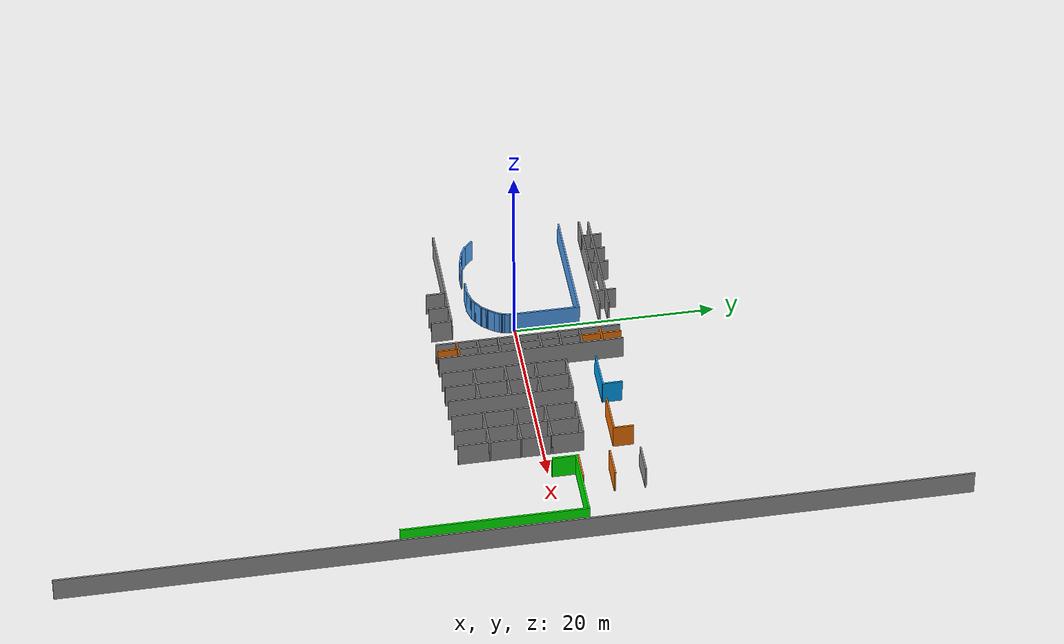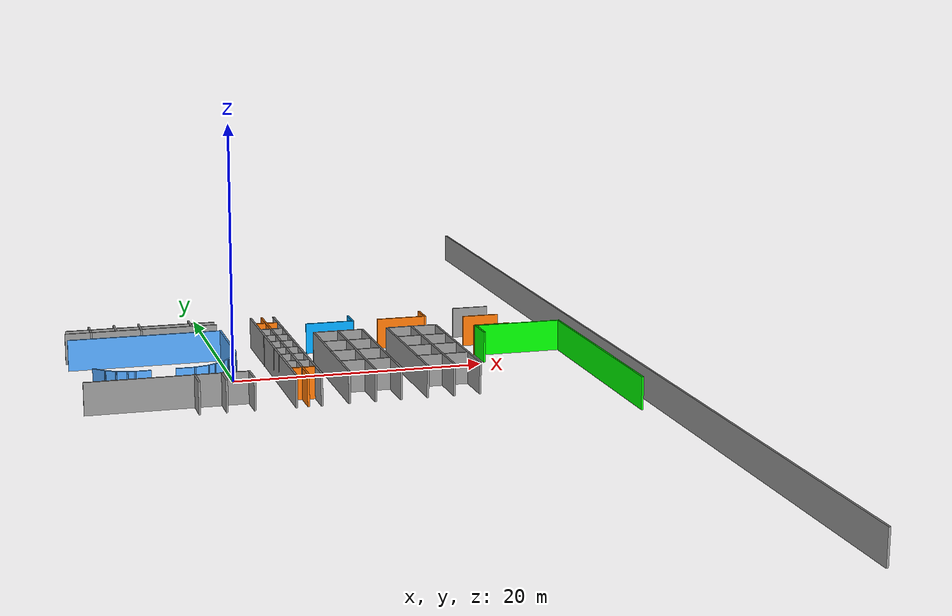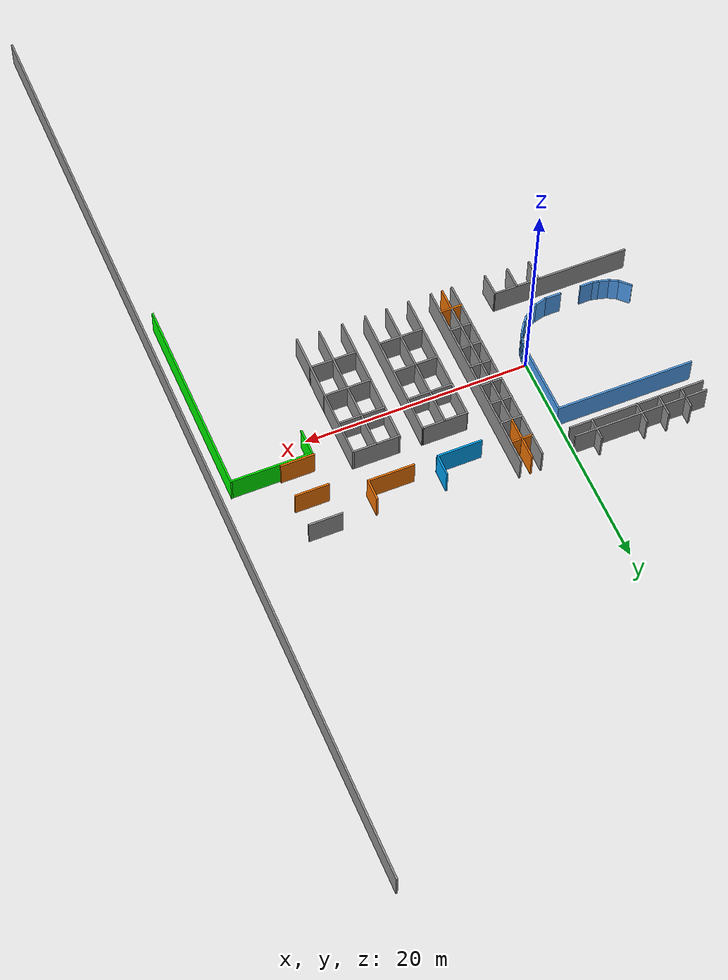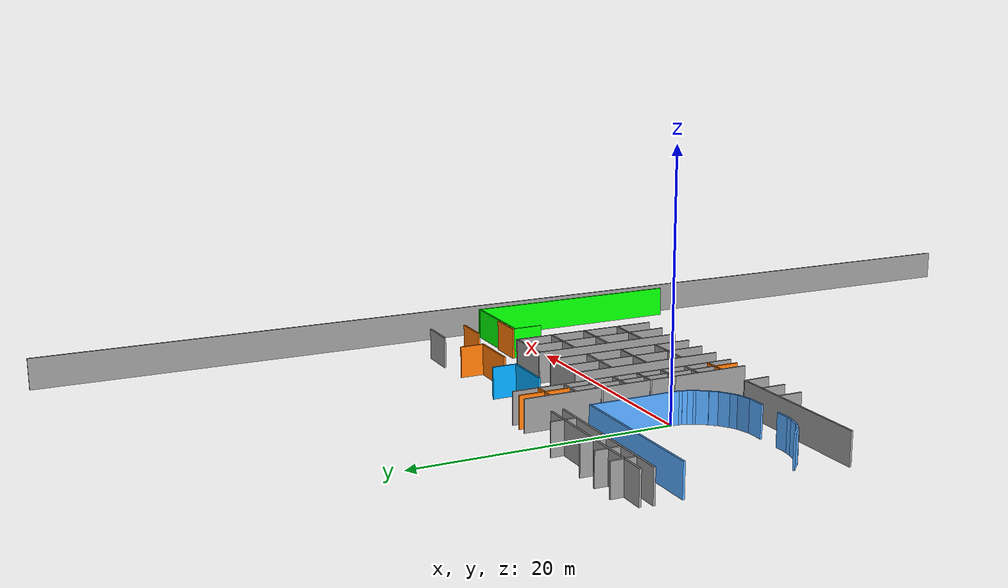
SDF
<sdf version="1.6">
 <model name="rebuilt_1">
  <pose>-2.12726 -2.76078 0 0 -0 0</pose>
  <link name="Wall_104">
   <collision name="Wall_104_Collision">
    <geometry><box><size>4.16873 0.15 2.5</size></box></geometry>
    <pose>0 0 1.25 0 -0 0</pose>
   </collision>
   <visual name="Wall_104_Visual">
    <pose>0 0 1.25 0 -0 0</pose>
    <geometry><box><size>4.16873 0.15 2.5</size></box></geometry>
    <material>
     <script><uri>file://media/materials/scripts/gazebo.material</uri><name>Gazebo/Grey</name></script>
     <ambient>0.996078 0.47451 0.0196078 1</ambient>
    </material>
    <meta><layer>0</layer></meta>
   </visual>
   <pose>17.4391 9.65173 0 0 0 -3.14159</pose>
  </link>
  <link name="Wall_109">
   <collision name="Wall_109_Collision">
    <geometry><box><size>2 0.15 2.5</size></box></geometry>
    <pose>0 0 1.25 0 -0 0</pose>
   </collision>
   <visual name="Wall_109_Visual">
    <pose>0 0 1.25 0 -0 0</pose>
    <geometry><box><size>2 0.15 2.5</size></box></geometry>
    <material>
     <script><uri>file://media/materials/scripts/gazebo.material</uri><name>Gazebo/Grey</name></script>
     <ambient>0.996078 0.47451 0.0196078 1</ambient>
    </material>
    <meta><layer>0</layer></meta>
   </visual>
   <pose>19.4485 10.5767 0 0 -0 1.5708</pose>
  </link>
  <link name="Wall_113">
   <collision name="Wall_113_Collision">
    <geometry><box><size>4.0365 0.15 2.5</size></box></geometry>
    <pose>0 0 1.25 0 -0 0</pose>
   </collision>
   <visual name="Wall_113_Visual">
    <pose>0 0 1.25 0 -0 0</pose>
    <geometry><box><size>4.0365 0.15 2.5</size></box></geometry>
    <material>
     <script><uri>file://media/materials/scripts/gazebo.material</uri><name>Gazebo/Grey</name></script>
     <ambient>0 0.666667 1 1</ambient>
    </material>
    <meta><layer>0</layer></meta>
   </visual>
   <pose>11.3657 9.62598 0 0 0 -3.1369</pose>
  </link>
  <link name="Wall_116">
   <collision name="Wall_116_Collision">
    <geometry><box><size>2 0.15 2.5</size></box></geometry>
    <pose>0 0 1.25 0 -0 0</pose>
   </collision>
   <visual name="Wall_116_Visual">
    <pose>0 0 1.25 0 -0 0</pose>
    <geometry><box><size>2 0.15 2.5</size></box></geometry>
    <material>
     <script><uri>file://media/materials/scripts/gazebo.material</uri><name>Gazebo/Grey</name></script>
     <ambient>0 0.666667 1 1</ambient>
    </material>
    <meta><layer>0</layer></meta>
   </visual>
   <pose>13.3089 10.5601 0 0 -0 1.5708</pose>
  </link>
  <link name="Wall_137">
   <collision name="Wall_137_Collision">
    <geometry><box><size>3 0.15 2.5</size></box></geometry>
    <pose>0 0 1.25 0 -0 0</pose>
   </collision>
   <visual name="Wall_137_Visual">
    <pose>0 0 1.25 0 -0 0</pose>
    <geometry><box><size>3 0.15 2.5</size></box></geometry>
    <material>
     <script><uri>file://media/materials/scripts/gazebo.material</uri><name>Gazebo/Grey</name></script>
     <ambient>0.996078 0.47451 0.0196078 1</ambient>
    </material>
    <meta><layer>0</layer></meta>
   </visual>
   <pose>23.9592 5.62733 0 0 -0 0</pose>
  </link>
  <link name="Wall_139">
   <collision name="Wall_139_Collision">
    <geometry><box><size>3 0.15 2.5</size></box></geometry>
    <pose>0 0 1.25 0 -0 0</pose>
   </collision>
   <visual name="Wall_139_Visual">
    <pose>0 0 1.25 0 -0 0</pose>
    <geometry><box><size>3 0.15 2.5</size></box></geometry>
    <material>
     <script><uri>file://media/materials/scripts/gazebo.material</uri><name>Gazebo/Grey</name></script>
     <ambient>0.996078 0.47451 0.0196078 1</ambient>
    </material>
    <meta><layer>0</layer></meta>
   </visual>
   <pose>23.9621 8.72528 0 0 -0 0</pose>
  </link>
  <link name="Wall_141">
   <collision name="Wall_141_Collision">
    <geometry><box><size>3 0.15 2.5</size></box></geometry>
    <pose>0 0 1.25 0 -0 0</pose>
   </collision>
   <visual name="Wall_141_Visual">
    <pose>0 0 1.25 0 -0 0</pose>
    <geometry><box><size>3 0.15 2.5</size></box></geometry>
    <material>
     <script><uri>file://media/materials/scripts/gazebo.material</uri><name>Gazebo/Grey</name></script>
     <ambient>1 1 1 1</ambient>
    </material>
    <meta><layer>0</layer></meta>
   </visual>
   <pose>23.9803 11.6962 0 0 -0 0</pose>
  </link>
  <link name="Wall_147">
   <collision name="Wall_147_Collision">
    <geometry><box><size>4.25 0.15 2.5</size></box></geometry>
    <pose>0 0 1.25 0 -0 0</pose>
   </collision>
   <visual name="Wall_147_Visual">
    <pose>0 0 1.25 0 -0 0</pose>
    <geometry><box><size>4.25 0.15 2.5</size></box></geometry>
    <material>
     <script><uri>file://media/materials/scripts/gazebo.material</uri><name>Gazebo/Grey</name></script>
     <ambient>1 1 1 1</ambient>
    </material>
    <meta><layer>0</layer></meta>
   </visual>
   <pose>17.4545 6.6361 0 0 -0 0</pose>
  </link>
  <link name="Wall_148">
   <collision name="Wall_148_Collision">
    <geometry><box><size>12.25 0.15 2.5</size></box></geometry>
    <pose>0 0 1.25 0 -0 0</pose>
   </collision>
   <visual name="Wall_148_Visual">
    <pose>0 0 1.25 0 -0 0</pose>
    <geometry><box><size>12.25 0.15 2.5</size></box></geometry>
    <material>
     <script><uri>file://media/materials/scripts/gazebo.material</uri><name>Gazebo/Grey</name></script>
     <ambient>1 1 1 1</ambient>
    </material>
    <meta><layer>0</layer></meta>
   </visual>
   <pose>19.5045 0.586104 0 0 0 -1.5708</pose>
  </link>
  <link name="Wall_150">
   <collision name="Wall_150_Collision">
    <geometry><box><size>12.25 0.15 2.5</size></box></geometry>
    <pose>0 0 1.25 0 -0 0</pose>
   </collision>
   <visual name="Wall_150_Visual">
    <pose>0 0 1.25 0 -0 0</pose>
    <geometry><box><size>12.25 0.15 2.5</size></box></geometry>
    <material>
     <script><uri>file://media/materials/scripts/gazebo.material</uri><name>Gazebo/Grey</name></script>
     <ambient>1 1 1 1</ambient>
    </material>
    <meta><layer>0</layer></meta>
   </visual>
   <pose>15.4045 0.586104 0 0 -0 1.5708</pose>
  </link>
  <link name="Wall_152">
   <collision name="Wall_152_Collision">
    <geometry><box><size>12.25 0.15 2.5</size></box></geometry>
    <pose>0 0 1.25 0 -0 0</pose>
   </collision>
   <visual name="Wall_152_Visual">
    <pose>0 0 1.25 0 -0 0</pose>
    <geometry><box><size>12.25 0.15 2.5</size></box></geometry>
    <material>
     <script><uri>file://media/materials/scripts/gazebo.material</uri><name>Gazebo/Grey</name></script>
     <ambient>1 1 1 1</ambient>
    </material>
    <meta><layer>0</layer></meta>
   </visual>
   <pose>17.4706 0.558918 0 0 0 -1.5708</pose>
  </link>
  <link name="Wall_154">
   <collision name="Wall_154_Collision">
    <geometry><box><size>4.25 0.15 2.5</size></box></geometry>
    <pose>0 0 1.25 0 -0 0</pose>
   </collision>
   <visual name="Wall_154_Visual">
    <pose>0 0 1.25 0 -0 0</pose>
    <geometry><box><size>4.25 0.15 2.5</size></box></geometry>
    <material>
     <script><uri>file://media/materials/scripts/gazebo.material</uri><name>Gazebo/Grey</name></script>
     <ambient>1 1 1 1</ambient>
    </material>
    <meta><layer>0</layer></meta>
   </visual>
   <pose>17.4545 3.59133 0 0 -0 0</pose>
  </link>
  <link name="Wall_156">
   <collision name="Wall_156_Collision">
    <geometry><box><size>4.25 0.15 2.5</size></box></geometry>
    <pose>0 0 1.25 0 -0 0</pose>
   </collision>
   <visual name="Wall_156_Visual">
    <pose>0 0 1.25 0 -0 0</pose>
    <geometry><box><size>4.25 0.15 2.5</size></box></geometry>
    <material>
     <script><uri>file://media/materials/scripts/gazebo.material</uri><name>Gazebo/Grey</name></script>
     <ambient>1 1 1 1</ambient>
    </material>
    <meta><layer>0</layer></meta>
   </visual>
   <pose>17.4582 0.624429 0 0 -0 0</pose>
  </link>
  <link name="Wall_158">
   <collision name="Wall_158_Collision">
    <geometry><box><size>4.25 0.15 2.5</size></box></geometry>
    <pose>0 0 1.25 0 -0 0</pose>
   </collision>
   <visual name="Wall_158_Visual">
    <pose>0 0 1.25 0 -0 0</pose>
    <geometry><box><size>4.25 0.15 2.5</size></box></geometry>
    <material>
     <script><uri>file://media/materials/scripts/gazebo.material</uri><name>Gazebo/Grey</name></script>
     <ambient>1 1 1 1</ambient>
    </material>
    <meta><layer>0</layer></meta>
   </visual>
   <pose>17.4619 -2.44385 0 0 -0 0</pose>
  </link>
  <link name="Wall_377">
   <collision name="Wall_377_Collision">
    <geometry><box><size>12.2057 0.15 2.5</size></box></geometry>
    <pose>0 0 1.25 0 -0 0</pose>
   </collision>
   <visual name="Wall_377_Visual">
    <pose>0 0 1.25 0 -0 0</pose>
    <geometry><box><size>12.2057 0.15 2.5</size></box></geometry>
    <material>
     <script><uri>file://media/materials/scripts/gazebo.material</uri><name>Gazebo/Grey</name></script>
     <ambient>1 1 1 1</ambient>
    </material>
    <meta><layer>0</layer></meta>
   </visual>
   <pose>-3.84482 11.2719 0 0 -0 3.14159</pose>
  </link>
  <link name="Wall_386">
   <collision name="Wall_386_Collision">
    <geometry><box><size>18.2759 0.15 2.5</size></box></geometry>
    <pose>0 0 1.25 0 -0 0</pose>
   </collision>
   <visual name="Wall_386_Visual">
    <pose>0 0 1.25 0 -0 0</pose>
    <geometry><box><size>18.2759 0.15 2.5</size></box></geometry>
    <material>
     <script><uri>file://media/materials/scripts/gazebo.material</uri><name>Gazebo/Grey</name></script>
     <ambient>1 1 1 1</ambient>
    </material>
    <meta><layer>0</layer></meta>
   </visual>
   <pose>7.2773 3.59124 0 0 0 -1.57008</pose>
  </link>
  <link name="Wall_389">
   <collision name="Wall_389_Collision">
    <geometry><box><size>18.2759 0.15 2.5</size></box></geometry>
    <pose>0 0 1.25 0 -0 0</pose>
   </collision>
   <visual name="Wall_389_Visual">
    <pose>0 0 1.25 0 -0 0</pose>
    <geometry><box><size>18.2759 0.15 2.5</size></box></geometry>
    <material>
     <script><uri>file://media/materials/scripts/gazebo.material</uri><name>Gazebo/Grey</name></script>
     <ambient>1 1 1 1</ambient>
    </material>
    <meta><layer>0</layer></meta>
   </visual>
   <pose>5.37559 3.59124 0 0 -0 1.57151</pose>
  </link>
  <link name="Wall_391">
   <collision name="Wall_391_Collision">
    <geometry><box><size>12.25 0.15 2.5</size></box></geometry>
    <pose>0 0 1.25 0 -0 0</pose>
   </collision>
   <visual name="Wall_391_Visual">
    <pose>0 0 1.25 0 -0 0</pose>
    <geometry><box><size>12.25 0.15 2.5</size></box></geometry>
    <material>
     <script><uri>file://media/materials/scripts/gazebo.material</uri><name>Gazebo/Grey</name></script>
     <ambient>1 1 1 1</ambient>
    </material>
    <meta><layer>0</layer></meta>
   </visual>
   <pose>-3.79366 -3.4951 0 0 -0 0</pose>
  </link>
  <link name="Wall_392">
   <collision name="Wall_392_Collision">
    <geometry><box><size>2.11278 0.15 2.5</size></box></geometry>
    <pose>0 0 1.25 0 -0 0</pose>
   </collision>
   <visual name="Wall_392_Visual">
    <pose>0 0 1.25 0 -0 0</pose>
    <geometry><box><size>2.11278 0.15 2.5</size></box></geometry>
    <material>
     <script><uri>file://media/materials/scripts/gazebo.material</uri><name>Gazebo/Grey</name></script>
     <ambient>1 1 1 1</ambient>
    </material>
    <meta><layer>0</layer></meta>
   </visual>
   <pose>2.276 -4.47629 0 0 0 -1.55076</pose>
  </link>
  <link name="Wall_396">
   <collision name="Wall_396_Collision">
    <geometry><box><size>12.25 0.15 2.5</size></box></geometry>
    <pose>0 0 1.25 0 -0 0</pose>
   </collision>
   <visual name="Wall_396_Visual">
    <pose>0 0 1.25 0 -0 0</pose>
    <geometry><box><size>12.25 0.15 2.5</size></box></geometry>
    <material>
     <script><uri>file://media/materials/scripts/gazebo.material</uri><name>Gazebo/Grey</name></script>
     <ambient>0.333333 0.666667 1 1</ambient>
    </material>
    <meta><layer>0</layer></meta>
   </visual>
   <pose>-3.79498 9.17071 0 0 -0 0</pose>
  </link>
  <link name="Wall_397">
   <collision name="Wall_397_Collision">
    <geometry><box><size>6.5 0.15 2.5</size></box></geometry>
    <pose>0 0 1.25 0 -0 0</pose>
   </collision>
   <visual name="Wall_397_Visual">
    <pose>0 0 1.25 0 -0 0</pose>
    <geometry><box><size>6.5 0.15 2.5</size></box></geometry>
    <material>
     <script><uri>file://media/materials/scripts/gazebo.material</uri><name>Gazebo/Grey</name></script>
     <ambient>0.333333 0.666667 1 1</ambient>
    </material>
    <meta><layer>0</layer></meta>
   </visual>
   <pose>2.25502 5.99571 0 0 0 -1.5708</pose>
  </link>
  <link name="Wall_399">
   <collision name="Wall_399_Collision">
    <geometry><box><size>0.789768 0.15 2.5</size></box></geometry>
    <pose>0 0 1.25 0 -0 0</pose>
   </collision>
   <visual name="Wall_399_Visual">
    <pose>0 0 1.25 0 -0 0</pose>
    <geometry><box><size>0.789768 0.15 2.5</size></box></geometry>
    <material>
     <script><uri>file://media/materials/scripts/gazebo.material</uri><name>Gazebo/Grey</name></script>
     <ambient>0.333333 0.666667 1 1</ambient>
    </material>
    <meta><layer>0</layer></meta>
   </visual>
   <pose>2.24036 2.50117 0 0 0 -1.61664</pose>
  </link>
  <link name="Wall_404">
   <collision name="Wall_404_Collision">
    <geometry><box><size>0.5 0.15 2.5</size></box></geometry>
    <pose>0 0 1.25 0 -0 0</pose>
   </collision>
   <visual name="Wall_404_Visual">
    <pose>0 0 1.25 0 -0 0</pose>
    <geometry><box><size>0.5 0.15 2.5</size></box></geometry>
    <material>
     <script><uri>file://media/materials/scripts/gazebo.material</uri><name>Gazebo/Grey</name></script>
     <ambient>0.333333 0.666667 1 1</ambient>
    </material>
    <meta><layer>0</layer></meta>
   </visual>
   <pose>2.19018 2.02236 0 0 0 -1.8326</pose>
  </link>
  <link name="Wall_405">
   <collision name="Wall_405_Collision">
    <geometry><box><size>0.455191 0.15 2.5</size></box></geometry>
    <pose>0 0 1.25 0 -0 0</pose>
   </collision>
   <visual name="Wall_405_Visual">
    <pose>0 0 1.25 0 -0 0</pose>
    <geometry><box><size>0.455191 0.15 2.5</size></box></geometry>
    <material>
     <script><uri>file://media/materials/scripts/gazebo.material</uri><name>Gazebo/Grey</name></script>
     <ambient>0.333333 0.666667 1 1</ambient>
    </material>
    <meta><layer>0</layer></meta>
   </visual>
   <pose>2.10448 1.69406 0 0 0 -1.77291</pose>
  </link>
  <link name="Wall_406">
   <collision name="Wall_406_Collision">
    <geometry><box><size>0.506692 0.15 2.5</size></box></geometry>
    <pose>0 0 1.25 0 -0 0</pose>
   </collision>
   <visual name="Wall_406_Visual">
    <pose>0 0 1.25 0 -0 0</pose>
    <geometry><box><size>0.506692 0.15 2.5</size></box></geometry>
    <material>
     <script><uri>file://media/materials/scripts/gazebo.material</uri><name>Gazebo/Grey</name></script>
     <ambient>0.333333 0.666667 1 1</ambient>
    </material>
    <meta><layer>0</layer></meta>
   </visual>
   <pose>2.00412 1.38042 0 0 0 -1.97248</pose>
  </link>
  <link name="Wall_407">
   <collision name="Wall_407_Collision">
    <geometry><box><size>0.5 0.15 2.5</size></box></geometry>
    <pose>0 0 1.25 0 -0 0</pose>
   </collision>
   <visual name="Wall_407_Visual">
    <pose>0 0 1.25 0 -0 0</pose>
    <geometry><box><size>0.5 0.15 2.5</size></box></geometry>
    <material>
     <script><uri>file://media/materials/scripts/gazebo.material</uri><name>Gazebo/Grey</name></script>
     <ambient>0.333333 0.666667 1 1</ambient>
    </material>
    <meta><layer>0</layer></meta>
   </visual>
   <pose>1.85667 1.06471 0 0 0 -2.0944</pose>
  </link>
  <link name="Wall_408">
   <collision name="Wall_408_Collision">
    <geometry><box><size>0.980383 0.15 2.5</size></box></geometry>
    <pose>0 0 1.25 0 -0 0</pose>
   </collision>
   <visual name="Wall_408_Visual">
    <pose>0 0 1.25 0 -0 0</pose>
    <geometry><box><size>0.980383 0.15 2.5</size></box></geometry>
    <material>
     <script><uri>file://media/materials/scripts/gazebo.material</uri><name>Gazebo/Grey</name></script>
     <ambient>0.333333 0.666667 1 1</ambient>
    </material>
    <meta><layer>0</layer></meta>
   </visual>
   <pose>1.52589 0.569849 0 0 0 -2.16807</pose>
  </link>
  <link name="Wall_409">
   <collision name="Wall_409_Collision">
    <geometry><box><size>0.25 0.15 2.5</size></box></geometry>
    <pose>0 0 1.25 0 -0 0</pose>
   </collision>
   <visual name="Wall_409_Visual">
    <pose>0 0 1.25 0 -0 0</pose>
    <geometry><box><size>0.25 0.15 2.5</size></box></geometry>
    <material>
     <script><uri>file://media/materials/scripts/gazebo.material</uri><name>Gazebo/Grey</name></script>
     <ambient>0.333333 0.666667 1 1</ambient>
    </material>
    <meta><layer>0</layer></meta>
   </visual>
   <pose>1.25703 0.191184 0 0 0 -2.35619</pose>
  </link>
  <link name="Wall_410">
   <collision name="Wall_410_Collision">
    <geometry><box><size>0.745059 0.15 2.5</size></box></geometry>
    <pose>0 0 1.25 0 -0 0</pose>
   </collision>
   <visual name="Wall_410_Visual">
    <pose>0 0 1.25 0 -0 0</pose>
    <geometry><box><size>0.745059 0.15 2.5</size></box></geometry>
    <material>
     <script><uri>file://media/materials/scripts/gazebo.material</uri><name>Gazebo/Grey</name></script>
     <ambient>0.333333 0.666667 1 1</ambient>
    </material>
    <meta><layer>0</layer></meta>
   </visual>
   <pose>1.0291 -0.06119 0 0 0 -2.2748</pose>
  </link>
  <link name="Wall_411">
   <collision name="Wall_411_Collision">
    <geometry><box><size>1.03278 0.15 2.5</size></box></geometry>
    <pose>0 0 1.25 0 -0 0</pose>
   </collision>
   <visual name="Wall_411_Visual">
    <pose>0 0 1.25 0 -0 0</pose>
    <geometry><box><size>1.03278 0.15 2.5</size></box></geometry>
    <material>
     <script><uri>file://media/materials/scripts/gazebo.material</uri><name>Gazebo/Grey</name></script>
     <ambient>0.333333 0.666667 1 1</ambient>
    </material>
    <meta><layer>0</layer></meta>
   </visual>
   <pose>0.479204 -0.547128 0 0 0 -2.51411</pose>
  </link>
  <link name="Wall_412">
   <collision name="Wall_412_Collision">
    <geometry><box><size>0.75 0.15 2.5</size></box></geometry>
    <pose>0 0 1.25 0 -0 0</pose>
   </collision>
   <visual name="Wall_412_Visual">
    <pose>0 0 1.25 0 -0 0</pose>
    <geometry><box><size>0.75 0.15 2.5</size></box></geometry>
    <material>
     <script><uri>file://media/materials/scripts/gazebo.material</uri><name>Gazebo/Grey</name></script>
     <ambient>0.333333 0.666667 1 1</ambient>
    </material>
    <meta><layer>0</layer></meta>
   </visual>
   <pose>-0.137911 -0.956274 0 0 0 -2.61799</pose>
  </link>
  <link name="Wall_418">
   <collision name="Wall_418_Collision">
    <geometry><box><size>1.25 0.15 2.5</size></box></geometry>
    <pose>0 0 1.25 0 -0 0</pose>
   </collision>
   <visual name="Wall_418_Visual">
    <pose>0 0 1.25 0 -0 0</pose>
    <geometry><box><size>1.25 0.15 2.5</size></box></geometry>
    <material>
     <script><uri>file://media/materials/scripts/gazebo.material</uri><name>Gazebo/Grey</name></script>
     <ambient>0.333333 0.666667 1 1</ambient>
    </material>
    <meta><layer>0</layer></meta>
   </visual>
   <pose>-0.928978 -1.24862 0 0 0 -2.87979</pose>
  </link>
  <link name="Wall_420">
   <collision name="Wall_420_Collision">
    <geometry><box><size>0.695862 0.15 2.5</size></box></geometry>
    <pose>0 0 1.25 0 -0 0</pose>
   </collision>
   <visual name="Wall_420_Visual">
    <pose>0 0 1.25 0 -0 0</pose>
    <geometry><box><size>0.695862 0.15 2.5</size></box></geometry>
    <material>
     <script><uri>file://media/materials/scripts/gazebo.material</uri><name>Gazebo/Grey</name></script>
     <ambient>0.333333 0.666667 1 1</ambient>
    </material>
    <meta><layer>0</layer></meta>
   </visual>
   <pose>-6.16164 -1.34237 0 0 -0 2.93807</pose>
  </link>
  <link name="Wall_421">
   <collision name="Wall_421_Collision">
    <geometry><box><size>1 0.15 2.5</size></box></geometry>
    <pose>0 0 1.25 0 -0 0</pose>
   </collision>
   <visual name="Wall_421_Visual">
    <pose>0 0 1.25 0 -0 0</pose>
    <geometry><box><size>1 0.15 2.5</size></box></geometry>
    <material>
     <script><uri>file://media/materials/scripts/gazebo.material</uri><name>Gazebo/Grey</name></script>
     <ambient>0.333333 0.666667 1 1</ambient>
    </material>
    <meta><layer>0</layer></meta>
   </visual>
   <pose>-6.83946 -1.1772 0 0 -0 2.87979</pose>
  </link>
  <link name="Wall_422">
   <collision name="Wall_422_Collision">
    <geometry><box><size>1 0.15 2.5</size></box></geometry>
    <pose>0 0 1.25 0 -0 0</pose>
   </collision>
   <visual name="Wall_422_Visual">
    <pose>0 0 1.25 0 -0 0</pose>
    <geometry><box><size>1 0.15 2.5</size></box></geometry>
    <material>
     <script><uri>file://media/materials/scripts/gazebo.material</uri><name>Gazebo/Grey</name></script>
     <ambient>0.333333 0.666667 1 1</ambient>
    </material>
    <meta><layer>0</layer></meta>
   </visual>
   <pose>-7.61804 -0.854705 0 0 -0 2.61799</pose>
  </link>
  <link name="Wall_423">
   <collision name="Wall_423_Collision">
    <geometry><box><size>1.25 0.15 2.5</size></box></geometry>
    <pose>0 0 1.25 0 -0 0</pose>
   </collision>
   <visual name="Wall_423_Visual">
    <pose>0 0 1.25 0 -0 0</pose>
    <geometry><box><size>1.25 0.15 2.5</size></box></geometry>
    <material>
     <script><uri>file://media/materials/scripts/gazebo.material</uri><name>Gazebo/Grey</name></script>
     <ambient>0.333333 0.666667 1 1</ambient>
    </material>
    <meta><layer>0</layer></meta>
   </visual>
   <pose>-8.37501 -0.253297 0 0 -0 2.35619</pose>
  </link>
  <link name="Wall_432">
   <collision name="Wall_432_Collision">
    <geometry><box><size>1.25 0.15 2.5</size></box></geometry>
    <pose>0 0 1.25 0 -0 0</pose>
   </collision>
   <visual name="Wall_432_Visual">
    <pose>0 0 1.25 0 -0 0</pose>
    <geometry><box><size>1.25 0.15 2.5</size></box></geometry>
    <material>
     <script><uri>file://media/materials/scripts/gazebo.material</uri><name>Gazebo/Grey</name></script>
     <ambient>0.333333 0.666667 1 1</ambient>
    </material>
    <meta><layer>0</layer></meta>
   </visual>
   <pose>-5.33685 -1.40503 0 0 -0 0</pose>
  </link>
  <link name="Wall_434">
   <collision name="Wall_434_Collision">
    <geometry><box><size>1.5 0.15 2.5</size></box></geometry>
    <pose>0 0 1.25 0 -0 0</pose>
   </collision>
   <visual name="Wall_434_Visual">
    <pose>0 0 1.25 0 -0 0</pose>
    <geometry><box><size>1.5 0.15 2.5</size></box></geometry>
    <material>
     <script><uri>file://media/materials/scripts/gazebo.material</uri><name>Gazebo/Grey</name></script>
     <ambient>0.333333 0.666667 1 1</ambient>
    </material>
    <meta><layer>0</layer></meta>
   </visual>
   <pose>-2.13524 -1.39098 0 0 -0 3.14159</pose>
  </link>
  <link name="Wall_528">
   <collision name="Wall_528_Collision">
    <geometry><box><size>4.0846 0.15 2.5</size></box></geometry>
    <pose>0 0 1.25 0 -0 0</pose>
   </collision>
   <visual name="Wall_528_Visual">
    <pose>0 0 1.25 0 -0 0</pose>
    <geometry><box><size>4.0846 0.15 2.5</size></box></geometry>
    <material>
     <script><uri>file://media/materials/scripts/gazebo.material</uri><name>Gazebo/Grey</name></script>
     <ambient>1 1 1 1</ambient>
    </material>
    <meta><layer>0</layer></meta>
   </visual>
   <pose>11.3608 6.67592 0 0 -0 0</pose>
  </link>
  <link name="Wall_529">
   <collision name="Wall_529_Collision">
    <geometry><box><size>12.3102 0.15 2.5</size></box></geometry>
    <pose>0 0 1.25 0 -0 0</pose>
   </collision>
   <visual name="Wall_529_Visual">
    <pose>0 0 1.25 0 -0 0</pose>
    <geometry><box><size>12.3102 0.15 2.5</size></box></geometry>
    <material>
     <script><uri>file://media/materials/scripts/gazebo.material</uri><name>Gazebo/Grey</name></script>
     <ambient>1 1 1 1</ambient>
    </material>
    <meta><layer>0</layer></meta>
   </visual>
   <pose>13.3422 0.595809 0 0 0 -1.57312</pose>
  </link>
  <link name="Wall_531">
   <collision name="Wall_531_Collision">
    <geometry><box><size>12.3102 0.15 2.5</size></box></geometry>
    <pose>0 0 1.25 0 -0 0</pose>
   </collision>
   <visual name="Wall_531_Visual">
    <pose>0 0 1.25 0 -0 0</pose>
    <geometry><box><size>12.3102 0.15 2.5</size></box></geometry>
    <material>
     <script><uri>file://media/materials/scripts/gazebo.material</uri><name>Gazebo/Grey</name></script>
     <ambient>1 1 1 1</ambient>
    </material>
    <meta><layer>0</layer></meta>
   </visual>
   <pose>9.3794 0.595809 0 0 -0 1.56848</pose>
  </link>
  <link name="Wall_533">
   <collision name="Wall_533_Collision">
    <geometry><box><size>12.25 0.15 2.5</size></box></geometry>
    <pose>0 0 1.25 0 -0 0</pose>
   </collision>
   <visual name="Wall_533_Visual">
    <pose>0 0 1.25 0 -0 0</pose>
    <geometry><box><size>12.25 0.15 2.5</size></box></geometry>
    <material>
     <script><uri>file://media/materials/scripts/gazebo.material</uri><name>Gazebo/Grey</name></script>
     <ambient>1 1 1 1</ambient>
    </material>
    <meta><layer>0</layer></meta>
   </visual>
   <pose>11.3676 0.571171 0 0 -0 1.5708</pose>
  </link>
  <link name="Wall_535">
   <collision name="Wall_535_Collision">
    <geometry><box><size>4 0.15 2.5</size></box></geometry>
    <pose>0 0 1.25 0 -0 0</pose>
   </collision>
   <visual name="Wall_535_Visual">
    <pose>0 0 1.25 0 -0 0</pose>
    <geometry><box><size>4 0.15 2.5</size></box></geometry>
    <material>
     <script><uri>file://media/materials/scripts/gazebo.material</uri><name>Gazebo/Grey</name></script>
     <ambient>1 1 1 1</ambient>
    </material>
    <meta><layer>0</layer></meta>
   </visual>
   <pose>11.3467 3.60198 0 0 -0 0</pose>
  </link>
  <link name="Wall_537">
   <collision name="Wall_537_Collision">
    <geometry><box><size>4 0.15 2.5</size></box></geometry>
    <pose>0 0 1.25 0 -0 0</pose>
   </collision>
   <visual name="Wall_537_Visual">
    <pose>0 0 1.25 0 -0 0</pose>
    <geometry><box><size>4 0.15 2.5</size></box></geometry>
    <material>
     <script><uri>file://media/materials/scripts/gazebo.material</uri><name>Gazebo/Grey</name></script>
     <ambient>1 1 1 1</ambient>
    </material>
    <meta><layer>0</layer></meta>
   </visual>
   <pose>11.3185 0.612644 0 0 -0 0</pose>
  </link>
  <link name="Wall_539">
   <collision name="Wall_539_Collision">
    <geometry><box><size>4 0.15 2.5</size></box></geometry>
    <pose>0 0 1.25 0 -0 0</pose>
   </collision>
   <visual name="Wall_539_Visual">
    <pose>0 0 1.25 0 -0 0</pose>
    <geometry><box><size>4 0.15 2.5</size></box></geometry>
    <material>
     <script><uri>file://media/materials/scripts/gazebo.material</uri><name>Gazebo/Grey</name></script>
     <ambient>1 1 1 1</ambient>
    </material>
    <meta><layer>0</layer></meta>
   </visual>
   <pose>11.3467 -2.46129 0 0 -0 0</pose>
  </link>
  <link name="Wall_541">
   <collision name="Wall_541_Collision">
    <geometry><box><size>1 0.15 2.5</size></box></geometry>
    <pose>0 0 1.25 0 -0 0</pose>
   </collision>
   <visual name="Wall_541_Visual">
    <pose>0 0 1.25 0 -0 0</pose>
    <geometry><box><size>1 0.15 2.5</size></box></geometry>
    <material>
     <script><uri>file://media/materials/scripts/gazebo.material</uri><name>Gazebo/Grey</name></script>
     <ambient>0.996078 0.47451 0.0196078 1</ambient>
    </material>
    <meta><layer>0</layer></meta>
   </visual>
   <pose>5.85823 10.7007 0 0 -0 0</pose>
  </link>
  <link name="Wall_542">
   <collision name="Wall_542_Collision">
    <geometry><box><size>1 0.15 2.5</size></box></geometry>
    <pose>0 0 1.25 0 -0 0</pose>
   </collision>
   <visual name="Wall_542_Visual">
    <pose>0 0 1.25 0 -0 0</pose>
    <geometry><box><size>1 0.15 2.5</size></box></geometry>
    <material>
     <script><uri>file://media/materials/scripts/gazebo.material</uri><name>Gazebo/Grey</name></script>
     <ambient>0.996078 0.47451 0.0196078 1</ambient>
    </material>
    <meta><layer>0</layer></meta>
   </visual>
   <pose>6.70823 10.7007 0 0 -0 0</pose>
  </link>
  <link name="Wall_544">
   <collision name="Wall_544_Collision">
    <geometry><box><size>12.25 0.15 2.5</size></box></geometry>
    <pose>0 0 1.25 0 -0 0</pose>
   </collision>
   <visual name="Wall_544_Visual">
    <pose>0 0 1.25 0 -0 0</pose>
    <geometry><box><size>12.25 0.15 2.5</size></box></geometry>
    <material>
     <script><uri>file://media/materials/scripts/gazebo.material</uri><name>Gazebo/Grey</name></script>
     <ambient>1 1 1 1</ambient>
    </material>
    <meta><layer>0</layer></meta>
   </visual>
   <pose>6.2775 2.50651 0 0 0 -1.5708</pose>
  </link>
  <link name="Wall_546">
   <collision name="Wall_546_Collision">
    <geometry><box><size>2 0.15 2.5</size></box></geometry>
    <pose>0 0 1.25 0 -0 0</pose>
   </collision>
   <visual name="Wall_546_Visual">
    <pose>0 0 1.25 0 -0 0</pose>
    <geometry><box><size>2 0.15 2.5</size></box></geometry>
    <material>
     <script><uri>file://media/materials/scripts/gazebo.material</uri><name>Gazebo/Grey</name></script>
     <ambient>0.996078 0.47451 0.0196078 1</ambient>
    </material>
    <meta><layer>0</layer></meta>
   </visual>
   <pose>6.3079 -3.48346 0 0 -0 0</pose>
  </link>
  <link name="Wall_548">
   <collision name="Wall_548_Collision">
    <geometry><box><size>2 0.15 2.5</size></box></geometry>
    <pose>0 0 1.25 0 -0 0</pose>
   </collision>
   <visual name="Wall_548_Visual">
    <pose>0 0 1.25 0 -0 0</pose>
    <geometry><box><size>2 0.15 2.5</size></box></geometry>
    <material>
     <script><uri>file://media/materials/scripts/gazebo.material</uri><name>Gazebo/Grey</name></script>
     <ambient>0.996078 0.47451 0.0196078 1</ambient>
    </material>
    <meta><layer>0</layer></meta>
   </visual>
   <pose>6.28456 -4.47553 0 0 0 -1.5708</pose>
  </link>
  <link name="Wall_550">
   <collision name="Wall_550_Collision">
    <geometry><box><size>2 0.15 2.5</size></box></geometry>
    <pose>0 0 1.25 0 -0 0</pose>
   </collision>
   <visual name="Wall_550_Visual">
    <pose>0 0 1.25 0 -0 0</pose>
    <geometry><box><size>2 0.15 2.5</size></box></geometry>
    <material>
     <script><uri>file://media/materials/scripts/gazebo.material</uri><name>Gazebo/Grey</name></script>
     <ambient>1 1 1 1</ambient>
    </material>
    <meta><layer>0</layer></meta>
   </visual>
   <pose>6.34869 -1.45008 0 0 -0 0</pose>
  </link>
  <link name="Wall_552">
   <collision name="Wall_552_Collision">
    <geometry><box><size>2 0.15 2.5</size></box></geometry>
    <pose>0 0 1.25 0 -0 0</pose>
   </collision>
   <visual name="Wall_552_Visual">
    <pose>0 0 1.25 0 -0 0</pose>
    <geometry><box><size>2 0.15 2.5</size></box></geometry>
    <material>
     <script><uri>file://media/materials/scripts/gazebo.material</uri><name>Gazebo/Grey</name></script>
     <ambient>1 1 1 1</ambient>
    </material>
    <meta><layer>0</layer></meta>
   </visual>
   <pose>6.29934 0.601565 0 0 -0 0</pose>
  </link>
  <link name="Wall_554">
   <collision name="Wall_554_Collision">
    <geometry><box><size>2 0.15 2.5</size></box></geometry>
    <pose>0 0 1.25 0 -0 0</pose>
   </collision>
   <visual name="Wall_554_Visual">
    <pose>0 0 1.25 0 -0 0</pose>
    <geometry><box><size>2 0.15 2.5</size></box></geometry>
    <material>
     <script><uri>file://media/materials/scripts/gazebo.material</uri><name>Gazebo/Grey</name></script>
     <ambient>1 1 1 1</ambient>
    </material>
    <meta><layer>0</layer></meta>
   </visual>
   <pose>6.29229 2.6109 0 0 -0 0</pose>
  </link>
  <link name="Wall_556">
   <collision name="Wall_556_Collision">
    <geometry><box><size>2 0.15 2.5</size></box></geometry>
    <pose>0 0 1.25 0 -0 0</pose>
   </collision>
   <visual name="Wall_556_Visual">
    <pose>0 0 1.25 0 -0 0</pose>
    <geometry><box><size>2 0.15 2.5</size></box></geometry>
    <material>
     <script><uri>file://media/materials/scripts/gazebo.material</uri><name>Gazebo/Grey</name></script>
     <ambient>1 1 1 1</ambient>
    </material>
    <meta><layer>0</layer></meta>
   </visual>
   <pose>6.31344 4.6555 0 0 -0 0</pose>
  </link>
  <link name="Wall_560">
   <collision name="Wall_560_Collision">
    <geometry><box><size>2 0.15 2.5</size></box></geometry>
    <pose>0 0 1.25 0 -0 0</pose>
   </collision>
   <visual name="Wall_560_Visual">
    <pose>0 0 1.25 0 -0 0</pose>
    <geometry><box><size>2 0.15 2.5</size></box></geometry>
    <material>
     <script><uri>file://media/materials/scripts/gazebo.material</uri><name>Gazebo/Grey</name></script>
     <ambient>1 1 1 1</ambient>
    </material>
    <meta><layer>0</layer></meta>
   </visual>
   <pose>6.27114 6.62254 0 0 -0 0</pose>
  </link>
  <link name="Wall_562">
   <collision name="Wall_562_Collision">
    <geometry><box><size>2 0.15 2.5</size></box></geometry>
    <pose>0 0 1.25 0 -0 0</pose>
   </collision>
   <visual name="Wall_562_Visual">
    <pose>0 0 1.25 0 -0 0</pose>
    <geometry><box><size>2 0.15 2.5</size></box></geometry>
    <material>
     <script><uri>file://media/materials/scripts/gazebo.material</uri><name>Gazebo/Grey</name></script>
     <ambient>1 1 1 1</ambient>
    </material>
    <meta><layer>0</layer></meta>
   </visual>
   <pose>6.31344 8.67418 0 0 -0 0</pose>
  </link>
  <link name="Wall_564">
   <collision name="Wall_564_Collision">
    <geometry><box><size>4 0.15 2.5</size></box></geometry>
    <pose>0 0 1.25 0 -0 0</pose>
   </collision>
   <visual name="Wall_564_Visual">
    <pose>0 0 1.25 0 -0 0</pose>
    <geometry><box><size>4 0.15 2.5</size></box></geometry>
    <material>
     <script><uri>file://media/materials/scripts/gazebo.material</uri><name>Gazebo/Grey</name></script>
     <ambient>0.996078 0.47451 0.0196078 1</ambient>
    </material>
    <meta><layer>0</layer></meta>
   </visual>
   <pose>6.27352 10.701 0 0 0 -1.5708</pose>
  </link>
  <link name="Wall_570">
   <collision name="Wall_570_Collision">
    <geometry><box><size>88.1101 0.15 2.5</size></box></geometry>
    <pose>0 0 1.25 0 -0 0</pose>
   </collision>
   <visual name="Wall_570_Visual">
    <pose>0 0 1.25 0 -0 0</pose>
    <geometry><box><size>88.1101 0.15 2.5</size></box></geometry>
    <material>
     <script><uri>file://media/materials/scripts/gazebo.material</uri><name>Gazebo/Grey</name></script>
     <ambient>1 1 1 1</ambient>
    </material>
    <meta><layer>0</layer></meta>
   </visual>
   <pose>30.995 -1.52436 0 0 0 -1.57111</pose>
  </link>
  <link name="Wall_587">
   <collision name="Wall_587_Collision">
    <geometry><box><size>2.48091 0.15 2.5</size></box></geometry>
    <pose>0 0 1.25 0 -0 0</pose>
   </collision>
   <visual name="Wall_587_Visual">
    <pose>0 0 1.25 0 -0 0</pose>
    <geometry><box><size>2.48091 0.15 2.5</size></box></geometry>
    <material>
     <script><uri>file://media/materials/scripts/gazebo.material</uri><name>Gazebo/Grey</name></script>
     <ambient>0 1 0 1</ambient>
    </material>
    <meta><layer>0</layer></meta>
   </visual>
   <pose>22.5922 4.33245 0 0 -0 1.5708</pose>
  </link>
  <link name="Wall_588">
   <collision name="Wall_588_Collision">
    <geometry><box><size>7.25 0.15 2.5</size></box></geometry>
    <pose>0 0 1.25 0 -0 0</pose>
   </collision>
   <visual name="Wall_588_Visual">
    <pose>0 0 1.25 0 -0 0</pose>
    <geometry><box><size>7.25 0.15 2.5</size></box></geometry>
    <material>
     <script><uri>file://media/materials/scripts/gazebo.material</uri><name>Gazebo/Grey</name></script>
     <ambient>0 1 0 1</ambient>
    </material>
    <meta><layer>0</layer></meta>
   </visual>
   <pose>26.1422 5.46091 0 0 -0 0</pose>
  </link>
  <link name="Wall_589">
   <collision name="Wall_589_Collision">
    <geometry><box><size>18.2309 0.15 2.5</size></box></geometry>
    <pose>0 0 1.25 0 -0 0</pose>
   </collision>
   <visual name="Wall_589_Visual">
    <pose>0 0 1.25 0 -0 0</pose>
    <geometry><box><size>18.2309 0.15 2.5</size></box></geometry>
    <material>
     <script><uri>file://media/materials/scripts/gazebo.material</uri><name>Gazebo/Grey</name></script>
     <ambient>0 1 0 1</ambient>
    </material>
    <meta><layer>0</layer></meta>
   </visual>
   <pose>29.6922 -3.54255 0 0 0 -1.5708</pose>
  </link>
  <link name="Wall_650">
   <collision name="Wall_650_Collision">
    <geometry><box><size>2 0.15 2.5</size></box></geometry>
    <pose>0 0 1.25 0 -0 0</pose>
   </collision>
   <visual name="Wall_650_Visual">
    <pose>0 0 1.25 0 -0 0</pose>
    <geometry><box><size>2 0.15 2.5</size></box></geometry>
    <material>
     <script><uri>file://media/materials/scripts/gazebo.material</uri><name>Gazebo/Grey</name></script>
     <ambient>1 1 1 1</ambient>
    </material>
    <meta><layer>0</layer></meta>
   </visual>
   <pose>-1.77703 -4.4562 0 0 0 -1.5708</pose>
  </link>
  <link name="Wall_652">
   <collision name="Wall_652_Collision">
    <geometry><box><size>2 0.15 2.5</size></box></geometry>
    <pose>0 0 1.25 0 -0 0</pose>
   </collision>
   <visual name="Wall_652_Visual">
    <pose>0 0 1.25 0 -0 0</pose>
    <geometry><box><size>2 0.15 2.5</size></box></geometry>
    <material>
     <script><uri>file://media/materials/scripts/gazebo.material</uri><name>Gazebo/Grey</name></script>
     <ambient>1 1 1 1</ambient>
    </material>
    <meta><layer>0</layer></meta>
   </visual>
   <pose>0.231225 -4.48783 0 0 0 -1.5708</pose>
  </link>
  <link name="Wall_654">
   <collision name="Wall_654_Collision">
    <geometry><box><size>12 0.15 2.5</size></box></geometry>
    <pose>0 0 1.25 0 -0 0</pose>
   </collision>
   <visual name="Wall_654_Visual">
    <pose>0 0 1.25 0 -0 0</pose>
    <geometry><box><size>12 0.15 2.5</size></box></geometry>
    <material>
     <script><uri>file://media/materials/scripts/gazebo.material</uri><name>Gazebo/Grey</name></script>
     <ambient>1 1 1 1</ambient>
    </material>
    <meta><layer>0</layer></meta>
   </visual>
   <pose>-3.80929 12.175 0 0 -0 0</pose>
  </link>
  <link name="Wall_656">
   <collision name="Wall_656_Collision">
    <geometry><box><size>2 0.15 2.5</size></box></geometry>
    <pose>0 0 1.25 0 -0 0</pose>
   </collision>
   <visual name="Wall_656_Visual">
    <pose>0 0 1.25 0 -0 0</pose>
    <geometry><box><size>2 0.15 2.5</size></box></geometry>
    <material>
     <script><uri>file://media/materials/scripts/gazebo.material</uri><name>Gazebo/Grey</name></script>
     <ambient>1 1 1 1</ambient>
    </material>
    <meta><layer>0</layer></meta>
   </visual>
   <pose>-7.86597 12.1878 0 0 0 -1.5708</pose>
  </link>
  <link name="Wall_658">
   <collision name="Wall_658_Collision">
    <geometry><box><size>2 0.15 2.5</size></box></geometry>
    <pose>0 0 1.25 0 -0 0</pose>
   </collision>
   <visual name="Wall_658_Visual">
    <pose>0 0 1.25 0 -0 0</pose>
    <geometry><box><size>2 0.15 2.5</size></box></geometry>
    <material>
     <script><uri>file://media/materials/scripts/gazebo.material</uri><name>Gazebo/Grey</name></script>
     <ambient>1 1 1 1</ambient>
    </material>
    <meta><layer>0</layer></meta>
   </visual>
   <pose>-5.8459 12.2033 0 0 0 -1.5708</pose>
  </link>
  <link name="Wall_660">
   <collision name="Wall_660_Collision">
    <geometry><box><size>2 0.15 2.5</size></box></geometry>
    <pose>0 0 1.25 0 -0 0</pose>
   </collision>
   <visual name="Wall_660_Visual">
    <pose>0 0 1.25 0 -0 0</pose>
    <geometry><box><size>2 0.15 2.5</size></box></geometry>
    <material>
     <script><uri>file://media/materials/scripts/gazebo.material</uri><name>Gazebo/Grey</name></script>
     <ambient>1 1 1 1</ambient>
    </material>
    <meta><layer>0</layer></meta>
   </visual>
   <pose>-3.85668 12.1878 0 0 0 -1.5708</pose>
  </link>
  <link name="Wall_664">
   <collision name="Wall_664_Collision">
    <geometry><box><size>2 0.15 2.5</size></box></geometry>
    <pose>0 0 1.25 0 -0 0</pose>
   </collision>
   <visual name="Wall_664_Visual">
    <pose>0 0 1.25 0 -0 0</pose>
    <geometry><box><size>2 0.15 2.5</size></box></geometry>
    <material>
     <script><uri>file://media/materials/scripts/gazebo.material</uri><name>Gazebo/Grey</name></script>
     <ambient>1 1 1 1</ambient>
    </material>
    <meta><layer>0</layer></meta>
   </visual>
   <pose>0.245146 12.2187 0 0 0 -1.5708</pose>
  </link>
  <static>1</static>
 </model>
</sdf>
